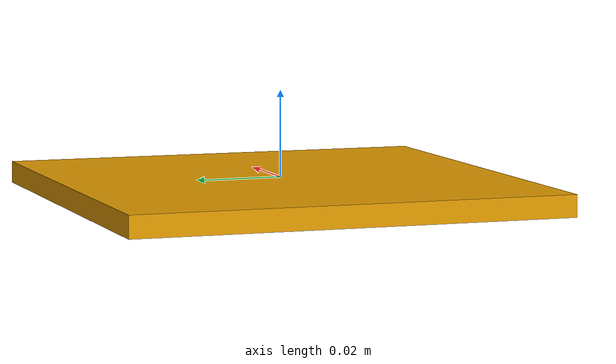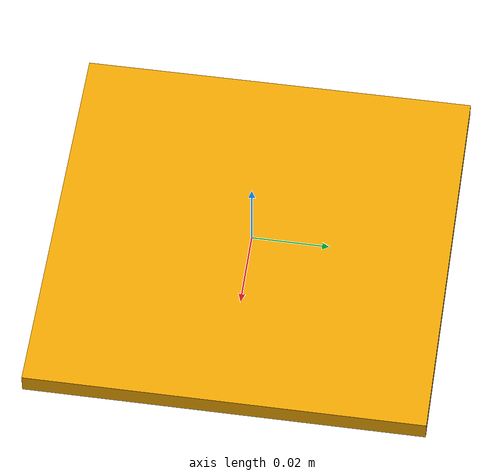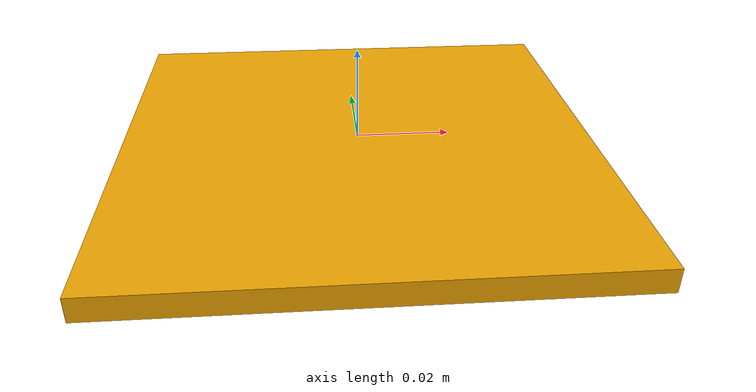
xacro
<?xml version="1.0"?>
<robot xmlns:xacro="http://www.ros.org/wiki/xacro" name="board">

  <gazebo>
    <plugin name="hand_of_god" filename="libgazebo_ros_hand_of_god.so">
      <linkName>board_link</linkName>
      <frameId>hog</frameId>
      <kl>200</kl>
      <ka>200</ka>
    </plugin>
  </gazebo>

  <link name="board_link">
    <collision>
      <geometry>
        <!-- 2-inch square -->
        <mesh
          scale="0.0508 0.0508 0.0508"
          filename="$(find camera_calibration_sim)/meshes/checkerboard_9x9.dae"/>
      </geometry>
    </collision>

    <visual>
      <geometry>
        <!-- 2-inch square -->
        <mesh
          scale="0.0508 0.0508 0.0508"
          filename="$(find camera_calibration_sim)/meshes/checkerboard_9x9.dae"/>
      </geometry>
    </visual>

    <inertial>
      <origin xyz="0 0 0" rpy="0 0 0"/>
      <mass value=".1"/>
      <inertia
        ixx="0.1" ixy="0.0" ixz="0.0"
        iyy="0.1" iyz="0.0"
        izz="0.1"/>
    </inertial>

  </link>

</robot>
